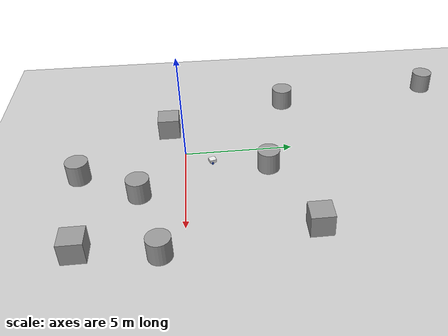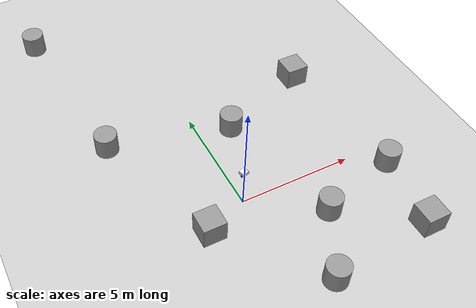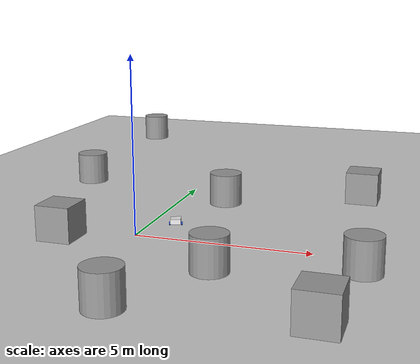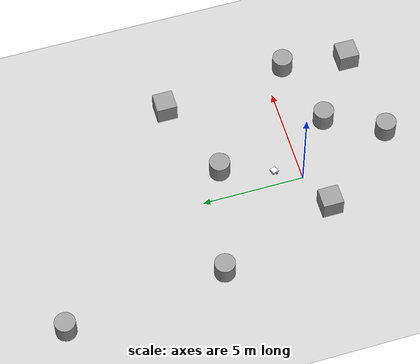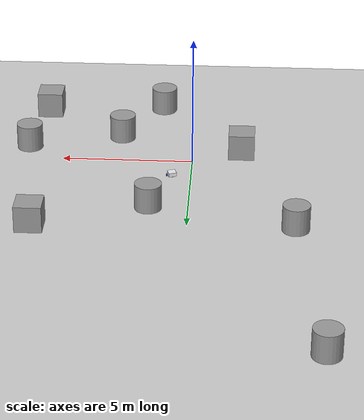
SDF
<sdf version="1.7">
 <world name="default">
  <light name="sun" type="directional">
   <pose>0 0 10 0 -0 0</pose>
   <diffuse>0.8 0.8 0.8 1</diffuse>
   <specular>0.2 0.2 0.2 1</specular>
   <attenuation>
    <range>1000</range>
    <constant>0.9</constant>
    <linear>0.01</linear>
    <quadratic>0.001</quadratic>
   </attenuation>
   <direction>-0.5 0.1 -0.9</direction>
   <spot><inner_angle>0</inner_angle><outer_angle>0</outer_angle><falloff>0</falloff></spot>
  </light>
  <model name="ground_plane">
   <static>1</static>
   <link name="link">
    <collision name="collision">
     <geometry><plane><normal>0 0 1</normal><size>100 100</size></plane></geometry>
     <surface>
      <contact><collide_bitmask>65535</collide_bitmask></contact>
      <friction><ode><mu>100</mu><mu2>50</mu2></ode></friction>
     </surface>
    </collision>
    <visual name="visual">
     <cast_shadows>0</cast_shadows>
     <geometry><plane><normal>0 0 1</normal><size>100 100</size></plane></geometry>
     <material>
      <script><uri>file://media/materials/scripts/gazebo.material</uri><name>Gazebo/Grey</name></script>
     </material>
    </visual>
   </link>
  </model>
  <gravity>0 0 -9.8</gravity>
  <magnetic_field>6e-06 2.3e-05 -4.2e-05</magnetic_field>
  <atmosphere type="adiabatic"/>
  <physics type="ode">
   <max_step_size>0.001</max_step_size>
   <real_time_factor>1</real_time_factor>
   <real_time_update_rate>1000</real_time_update_rate>
  </physics>
  <scene><ambient>0.4 0.4 0.4 1</ambient><background>0.7 0.7 0.7 1</background><shadows>1</shadows></scene>
  <audio><device>default</device></audio>
  <spherical_coordinates>
   <surface_model>EARTH_WGS84</surface_model>
   <latitude_deg>0</latitude_deg>
   <longitude_deg>0</longitude_deg>
   <elevation>0</elevation>
   <heading_deg>0</heading_deg>
  </spherical_coordinates>
  <model name="my_bot">
   <link name="base_link">
    <inertial>
     <pose>0.065 0 0.0625 0 -0 0</pose>
     <mass>0.6</mass>
     <inertia>
      <ixx>0.00525625</ixx>
      <ixy>0</ixy>
      <ixz>0.0005625</ixz>
      <iyy>0.00593125</iyy>
      <iyz>0</iyz>
      <izz>0.008275</izz>
     </inertia>
    </inertial>
    <collision name="base_link_fixed_joint_lump__chassis_collision">
     <pose>0.05 0 0.075 0 -0 0</pose>
     <geometry><box><size>0.3 0.3 0.15</size></box></geometry>
    </collision>
    <collision name="base_link_fixed_joint_lump__caster_wheel_collision_1">
     <pose>0.14 0 0 0 -0 0</pose>
     <geometry><sphere><radius>0.05</radius></sphere></geometry>
     <surface><friction><ode><mu>0.001</mu><mu2>0.001</mu2></ode></friction></surface>
    </collision>
    <visual name="base_link_fixed_joint_lump__chassis_visual">
     <pose>0.05 0 0.075 0 -0 0</pose>
     <geometry><box><size>0.3 0.3 0.15</size></box></geometry>
     <material>
      <script><name>Gazebo/White</name><uri>file://media/materials/scripts/gazebo.material</uri></script>
     </material>
    </visual>
    <visual name="base_link_fixed_joint_lump__caster_wheel_visual_1">
     <pose>0.14 0 0 0 -0 0</pose>
     <geometry><sphere><radius>0.05</radius></sphere></geometry>
     <material>
      <script><name>Gazebo/Black</name><uri>file://media/materials/scripts/gazebo.material</uri></script>
     </material>
    </visual>
   </link>
   <joint name="left_wheel_joint" type="revolute">
    <pose relative_to="base_link">0 0.175 0 -1.5708 0 0</pose>
    <parent>base_link</parent>
    <child>left_wheel</child>
    <axis>
     <xyz>0 0 1</xyz>
     <limit><lower>-1e+16</lower><upper>1e+16</upper></limit>
     <dynamics><spring_reference>0</spring_reference><spring_stiffness>0</spring_stiffness></dynamics>
    </axis>
   </joint>
   <link name="left_wheel">
    <pose relative_to="left_wheel_joint">0 0 0 0 -0 0</pose>
    <inertial>
     <mass>0.1</mass>
     <inertia>
      <ixx>7.58333e-05</ixx>
      <ixy>0</ixy>
      <ixz>0</ixz>
      <iyy>7.58333e-05</iyy>
      <iyz>0</iyz>
      <izz>0.000125</izz>
     </inertia>
    </inertial>
    <collision name="left_wheel_collision">
     <geometry><cylinder><length>0.04</length><radius>0.05</radius></cylinder></geometry>
    </collision>
    <visual name="left_wheel_visual">
     <geometry><cylinder><length>0.04</length><radius>0.05</radius></cylinder></geometry>
     <material>
      <script><name>Gazebo/Blue</name><uri>file://media/materials/scripts/gazebo.material</uri></script>
     </material>
    </visual>
   </link>
   <joint name="right_wheel_joint" type="revolute">
    <pose relative_to="base_link">0 -0.175 0 1.5708 -0 0</pose>
    <parent>base_link</parent>
    <child>right_wheel</child>
    <axis>
     <xyz>0 0 -1</xyz>
     <limit><lower>-1e+16</lower><upper>1e+16</upper></limit>
     <dynamics><spring_reference>0</spring_reference><spring_stiffness>0</spring_stiffness></dynamics>
    </axis>
   </joint>
   <link name="right_wheel">
    <pose relative_to="right_wheel_joint">0 0 0 0 -0 0</pose>
    <inertial>
     <mass>0.1</mass>
     <inertia>
      <ixx>7.58333e-05</ixx>
      <ixy>0</ixy>
      <ixz>0</ixz>
      <iyy>7.58333e-05</iyy>
      <iyz>0</iyz>
      <izz>0.000125</izz>
     </inertia>
    </inertial>
    <collision name="right_wheel_collision">
     <geometry><cylinder><length>0.04</length><radius>0.05</radius></cylinder></geometry>
    </collision>
    <visual name="right_wheel_visual">
     <geometry><cylinder><length>0.04</length><radius>0.05</radius></cylinder></geometry>
     <material>
      <script><name>Gazebo/Blue</name><uri>file://media/materials/scripts/gazebo.material</uri></script>
     </material>
    </visual>
   </link>
   <static>0</static>
   <plugin name="diff_drive" filename="libgazebo_ros_diff_drive.so">
    <left_joint>left_wheel_joint</left_joint>
    <right_joint>right_wheel_joint</right_joint>
    <wheel_separation>0.35</wheel_separation>
    <wheel_diameter>0.1</wheel_diameter>
    <max_wheel_torque>200</max_wheel_torque>
    <max_wheel_acceleration>10.0</max_wheel_acceleration>
    <odometry_frame>odom</odometry_frame>
    <robot_base_frame>base_link</robot_base_frame>
    <publish_odom>1</publish_odom>
    <publish_odom_tf>1</publish_odom_tf>
    <publish_wheel_tf>1</publish_wheel_tf>
   </plugin>
   <pose>0.744419 1.18777 0.05 0 1.5e-05 1.90198</pose>
  </model>
  <model name="unit_box">
   <pose>-1.86949 -0.74614 0.499995 0 1e-05 0</pose>
   <link name="link">
    <inertial>
     <mass>1</mass>
     <inertia>
      <ixx>0.166667</ixx>
      <ixy>0</ixy>
      <ixz>0</ixz>
      <iyy>0.166667</iyy>
      <iyz>0</iyz>
      <izz>0.166667</izz>
     </inertia>
    </inertial>
    <collision name="collision"><geometry><box><size>1 1 1</size></box></geometry></collision>
    <visual name="visual">
     <geometry><box><size>1 1 1</size></box></geometry>
     <material>
      <script><name>Gazebo/Grey</name><uri>file://media/materials/scripts/gazebo.material</uri></script>
     </material>
    </visual>
   </link>
  </model>
  <model name="unit_box_0">
   <pose>5.93804 -4.17769 0.499995 -1e-05 -0 -0</pose>
   <link name="link">
    <inertial>
     <mass>1</mass>
     <inertia>
      <ixx>0.166667</ixx>
      <ixy>0</ixy>
      <ixz>0</ixz>
      <iyy>0.166667</iyy>
      <iyz>0</iyz>
      <izz>0.166667</izz>
     </inertia>
    </inertial>
    <collision name="collision"><geometry><box><size>1 1 1</size></box></geometry></collision>
    <visual name="visual">
     <geometry><box><size>1 1 1</size></box></geometry>
     <material>
      <script><name>Gazebo/Grey</name><uri>file://media/materials/scripts/gazebo.material</uri></script>
     </material>
    </visual>
   </link>
  </model>
  <model name="unit_box_1">
   <pose>5.57247 5.36477 0.499995 0 1e-05 0</pose>
   <link name="link">
    <inertial>
     <mass>1</mass>
     <inertia>
      <ixx>0.166667</ixx>
      <ixy>0</ixy>
      <ixz>0</ixz>
      <iyy>0.166667</iyy>
      <iyz>0</iyz>
      <izz>0.166667</izz>
     </inertia>
    </inertial>
    <collision name="collision"><geometry><box><size>1 1 1</size></box></geometry></collision>
    <visual name="visual">
     <geometry><box><size>1 1 1</size></box></geometry>
     <material>
      <script><name>Gazebo/Grey</name><uri>file://media/materials/scripts/gazebo.material</uri></script>
     </material>
    </visual>
   </link>
  </model>
  <model name="unit_cylinder">
   <pose>-4.69834 12.9007 0.499998 3e-06 -4e-06 0</pose>
   <link name="link">
    <inertial>
     <mass>1</mass>
     <inertia><ixx>0.145833</ixx><ixy>0</ixy><ixz>0</ixz><iyy>0.145833</iyy><iyz>0</iyz><izz>0.125</izz></inertia>
    </inertial>
    <collision name="collision">
     <geometry><cylinder><radius>0.5</radius><length>1</length></cylinder></geometry>
    </collision>
    <visual name="visual">
     <geometry><cylinder><radius>0.5</radius><length>1</length></cylinder></geometry>
     <material>
      <script><name>Gazebo/Grey</name><uri>file://media/materials/scripts/gazebo.material</uri></script>
     </material>
    </visual>
   </link>
  </model>
  <model name="unit_cylinder_0">
   <pose>-3.87503 5.07675 0.499992 -3e-06 -4e-06 -0</pose>
   <link name="link">
    <inertial>
     <mass>1</mass>
     <inertia><ixx>0.145833</ixx><ixy>0</ixy><ixz>0</ixz><iyy>0.145833</iyy><iyz>0</iyz><izz>0.125</izz></inertia>
    </inertial>
    <collision name="collision">
     <geometry><cylinder><radius>0.5</radius><length>1</length></cylinder></geometry>
    </collision>
    <visual name="visual">
     <geometry><cylinder><radius>0.5</radius><length>1</length></cylinder></geometry>
     <material>
      <script><name>Gazebo/Grey</name><uri>file://media/materials/scripts/gazebo.material</uri></script>
     </material>
    </visual>
   </link>
  </model>
  <model name="unit_cylinder_1">
   <pose>6.3931 -0.960437 0.499993 -3e-06 -3e-06 0</pose>
   <link name="link">
    <inertial>
     <mass>1</mass>
     <inertia><ixx>0.145833</ixx><ixy>0</ixy><ixz>0</ixz><iyy>0.145833</iyy><iyz>0</iyz><izz>0.125</izz></inertia>
    </inertial>
    <collision name="collision">
     <geometry><cylinder><radius>0.5</radius><length>1</length></cylinder></geometry>
    </collision>
    <visual name="visual">
     <geometry><cylinder><radius>0.5</radius><length>1</length></cylinder></geometry>
     <material>
      <script><name>Gazebo/Grey</name><uri>file://media/materials/scripts/gazebo.material</uri></script>
     </material>
    </visual>
   </link>
  </model>
  <model name="unit_cylinder_2">
   <pose>1.3352 -4.65412 0.499997 3e-06 4e-06 -0</pose>
   <link name="link">
    <inertial>
     <mass>1</mass>
     <inertia><ixx>0.145833</ixx><ixy>0</ixy><ixz>0</ixz><iyy>0.145833</iyy><iyz>0</iyz><izz>0.125</izz></inertia>
    </inertial>
    <collision name="collision">
     <geometry><cylinder><radius>0.5</radius><length>1</length></cylinder></geometry>
    </collision>
    <visual name="visual">
     <geometry><cylinder><radius>0.5</radius><length>1</length></cylinder></geometry>
     <material>
      <script><name>Gazebo/Grey</name><uri>file://media/materials/scripts/gazebo.material</uri></script>
     </material>
    </visual>
   </link>
  </model>
  <model name="unit_cylinder_3">
   <pose>1.45626 3.76149 0.499993 -3e-06 -4e-06 -0</pose>
   <link name="link">
    <inertial>
     <mass>1</mass>
     <inertia><ixx>0.145833</ixx><ixy>0</ixy><ixz>0</ixz><iyy>0.145833</iyy><iyz>0</iyz><izz>0.125</izz></inertia>
    </inertial>
    <collision name="collision">
     <geometry><cylinder><radius>0.5</radius><length>1</length></cylinder></geometry>
    </collision>
    <visual name="visual">
     <geometry><cylinder><radius>0.5</radius><length>1</length></cylinder></geometry>
     <material>
      <script><name>Gazebo/Grey</name><uri>file://media/materials/scripts/gazebo.material</uri></script>
     </material>
    </visual>
   </link>
  </model>
  <model name="unit_cylinder_4">
   <pose>2.8314 -1.94992 0.499997 3e-06 4e-06 -0</pose>
   <link name="link">
    <inertial>
     <mass>1</mass>
     <inertia><ixx>0.145833</ixx><ixy>0</ixy><ixz>0</ixz><iyy>0.145833</iyy><iyz>0</iyz><izz>0.125</izz></inertia>
    </inertial>
    <collision name="collision">
     <geometry><cylinder><radius>0.5</radius><length>1</length></cylinder></geometry>
    </collision>
    <visual name="visual">
     <geometry><cylinder><radius>0.5</radius><length>1</length></cylinder></geometry>
     <material>
      <script><name>Gazebo/Grey</name><uri>file://media/materials/scripts/gazebo.material</uri></script>
     </material>
    </visual>
   </link>
  </model>
 </world>
</sdf>
